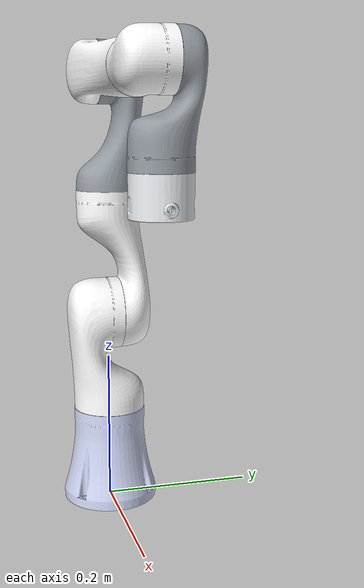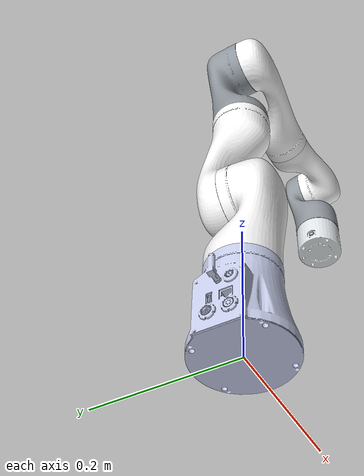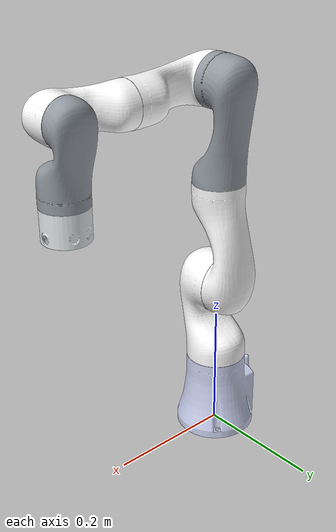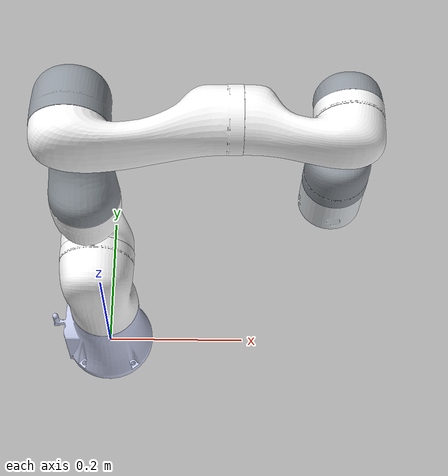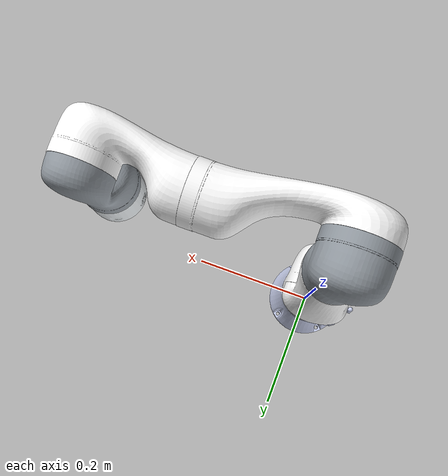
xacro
<?xml version="1.0"?>
<robot xmlns:xacro="http://www.ros.org/wiki/xacro" name="TCB710_06N">
    <xacro:arg name="initial_positions_file" default="initial_positions.yaml" />

    <!-- Import TCB710_06N urdf file -->
    <xacro:include filename="$(find tl_robot_description)/urdf/TCB710_06N.urdf" />

    <!-- Import control_xacro -->
    <xacro:include filename="TCB710_06N.ros2_control.xacro" />

    <xacro:TCB710_06N_ros2_control name="TLHardware" initial_positions_file="$(arg initial_positions_file)"/>

</robot>

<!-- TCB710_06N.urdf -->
<robot
  name="TCB710_06N">
<mujoco>
    <compiler meshdir="../meshes/TCB710_06N" discardvisual="false"/>
  </mujoco>
  <link
    name="tl_robot_link0">
    <inertial>
      <origin
        xyz="0.00019716 -5.6594E-05 0.037668"
        rpy="0 0 0" />
      <mass
        value="0.7499" />
      <inertia
        ixx="0.0015624"
        ixy="-6.4826E-08"
        ixz="4.2171E-05"
        iyy="0.0014306"
        iyz="-1.474E-07"
        izz="0.0018195" />
    </inertial>
    <visual>
      <origin
        xyz="0 0 0"
        rpy="0 0 0" />
      <geometry>
        <mesh
          filename="package://tl_robot_description/meshes/TCB710_06N/tl_robot_link0.STL" />
      </geometry>
      <material
        name="">
        <color
          rgba="0.79216 0.81961 0.93333 1" />
      </material>
    </visual>
    <collision>
      <origin
        xyz="0 0 0"
        rpy="0 0 0" />
      <geometry>
        <mesh
          filename="package://tl_robot_description/meshes/TCB710_06N/tl_robot_link0.STL" />
      </geometry>
    </collision>
  </link>
  <link
    name="tl_robot_link1">
    <inertial>
      <origin
        xyz="-3.2217E-06 -0.015124 0.070502"
        rpy="0 0 0" />
      <mass
        value="0.51848" />
      <inertia
        ixx="0.0016711"
        ixy="1.5621E-07"
        ixz="-1.5467E-07"
        iyy="0.001757"
        iyz="0.00026361"
        izz="0.00078448" />
    </inertial>
    <visual>
      <origin
        xyz="0 0 0"
        rpy="0 0 0" />
      <geometry>
        <mesh
          filename="package://tl_robot_description/meshes/TCB710_06N/tl_robot_link1.STL" />
      </geometry>
      <material
        name="">
        <color
          rgba="1 1 1 1" />
      </material>
    </visual>
    <collision>
      <origin
        xyz="0 0 0"
        rpy="0 0 0" />
      <geometry>
        <mesh
          filename="package://tl_robot_description/meshes/TCB710_06N/tl_robot_link1.STL" />
      </geometry>
    </collision>
  </link>
  <joint
    name="tl_robot_joint1"
    type="revolute">
    <origin
      xyz="0 0 0.1305"
      rpy="0 0 0" />
    <parent
      link="tl_robot_link0" />
    <child
      link="tl_robot_link1" />
    <axis
      xyz="0 0 1" />
    <limit
      lower="-3.141592654"
      upper="3.141592654"
      effort="0"
      velocity="0" />
  </joint>
  <link
    name="tl_robot_link2">
    <inertial>
      <origin
        xyz="-1.2697E-05 -0.066422 0.0045783"
        rpy="0 0 0" />
      <mass
        value="0.45884" />
      <inertia
        ixx="0.0016432"
        ixy="-2.7265E-07"
        ixz="-7.6925E-08"
        iyy="0.00055884"
        iyz="-0.00028299"
        izz="0.0017123" />
    </inertial>
    <visual>
      <origin
        xyz="0 0 0"
        rpy="0 0 0" />
      <geometry>
        <mesh
          filename="package://tl_robot_description/meshes/TCB710_06N/tl_robot_link2.STL" />
      </geometry>
      <material
        name="">
        <color
          rgba="1 1 1 1" />
      </material>
    </visual>
    <collision>
      <origin
        xyz="0 0 0"
        rpy="0 0 0" />
      <geometry>
        <mesh
          filename="package://tl_robot_description/meshes/TCB710_06N/tl_robot_link2.STL" />
      </geometry>
    </collision>
  </link>
  <joint
    name="tl_robot_joint2"
    type="revolute">
    <origin
      xyz="0 0.016 0.1315"
      rpy="-1.5708 0 0" />
    <parent
      link="tl_robot_link1" />
    <child
      link="tl_robot_link2" />
    <axis
      xyz="0 0 1" />
    <limit
      lower="-2.35619449"
      upper="2.35619449"
      effort="0"
      velocity="0" />
  </joint>
  <link
    name="tl_robot_link3">
    <inertial>
      <origin
        xyz="5.3045E-06 0.016606 0.08269"
        rpy="0 0 0" />
      <mass
        value="0.46363" />
      <inertia
        ixx="0.0016235"
        ixy="-7.0673E-08"
        ixz="-2.6457E-07"
        iyy="0.0016823"
        iyz="-0.0002385"
        izz="0.00046382" />
    </inertial>
    <visual>
      <origin
        xyz="0 0 0"
        rpy="0 0 0" />
      <geometry>
        <mesh
          filename="package://tl_robot_description/meshes/TCB710_06N/tl_robot_link3.STL" />
      </geometry>
      <material
        name="">
        <color
          rgba="0.56863 0.59608 0.62353 1" />
      </material>
    </visual>
    <collision>
      <origin
        xyz="0 0 0"
        rpy="0 0 0" />
      <geometry>
        <mesh
          filename="package://tl_robot_description/meshes/TCB710_06N/tl_robot_link3.STL" />
      </geometry>
    </collision>
  </link>
  <joint
    name="tl_robot_joint3"
    type="revolute">
    <origin
      xyz="0 -0.1675 -0.016"
      rpy="1.5708 0 0" />
    <parent
      link="tl_robot_link2" />
    <child
      link="tl_robot_link3" />
    <axis
      xyz="0 0 1" />
    <limit
      lower="-3.141592654"
      upper="3.141592654"
      effort="0"
      velocity="0" />
  </joint>
  <link
    name="tl_robot_link4">
    <inertial>
      <origin
        xyz="2.78354237109905E-06 0.0694960867121007 0.00637377402709792"
        rpy="0 0 0" />
      <mass
        value="0.396498595803027" />
      <inertia
        ixx="0.00137497380584233"
        ixy="7.68580314688507E-08"
        ixz="2.5461038707363E-08"
        iyy="0.000357925421554553"
        iyz="0.000211759769095163"
        izz="0.00141757729346042" />
    </inertial>
    <visual>
      <origin
        xyz="0 0 0"
        rpy="0 0 0" />
      <geometry>
        <mesh
          filename="package://tl_robot_description/meshes/TCB710_06N/tl_robot_link4.STL" />
      </geometry>
      <material
        name="">
        <color
          rgba="1 1 1 1" />
      </material>
    </visual>
    <collision>
      <origin
        xyz="0 0 0"
        rpy="0 0 0" />
      <geometry>
        <mesh
          filename="package://tl_robot_description/meshes/TCB710_06N/tl_robot_link4.STL" />
      </geometry>
    </collision>
  </link>
  <joint
    name="tl_robot_joint4"
    type="revolute">
    <origin
      xyz="0 -0.0135 0.153"
      rpy="1.5708 1.5708 0" />
    <parent
      link="tl_robot_link3" />
    <child
      link="tl_robot_link4" />
    <axis
      xyz="0 0 -1" />
    <limit
      lower="-4.101523742"
      upper="0.959931089"
      effort="0"
      velocity="0" />
  </joint>
  <link
    name="tl_robot_link5">
    <inertial>
      <origin
        xyz="-3.4093E-06 -0.013324 0.058713"
        rpy="0 0 0" />
      <mass
        value="0.24429" />
      <inertia
        ixx="0.00050736"
        ixy="3.1409E-08"
        ixz="-1.1005E-07"
        iyy="0.00052202"
        iyz="8.9413E-05"
        izz="0.00020297" />
    </inertial>
    <visual>
      <origin
        xyz="0 0 0"
        rpy="0 0 0" />
      <geometry>
        <mesh
          filename="package://tl_robot_description/meshes/TCB710_06N/tl_robot_link5.STL" />
      </geometry>
      <material
        name="">
        <color
          rgba="1 1 1 1" />
      </material>
    </visual>
    <collision>
      <origin
        xyz="0 0 0"
        rpy="0 0 0" />
      <geometry>
        <mesh
          filename="package://tl_robot_description/meshes/TCB710_06N/tl_robot_link5.STL" />
      </geometry>
    </collision>
  </link>
  <joint
    name="tl_robot_joint5"
    type="revolute">
    <origin
      xyz="0 0.1745 -0.0135"
      rpy="-1.5708 0 0" />
    <parent
      link="tl_robot_link4" />
    <child
      link="tl_robot_link5" />
    <axis
      xyz="0 0 1" />
    <limit
      lower="-3.141592654"
      upper="3.141592654"
      effort="0"
      velocity="0" />
  </joint>
  <link
    name="tl_robot_link6">
    <inertial>
      <origin
        xyz="-1.4032E-05 -0.043424 0.0005268"
        rpy="0 0 0" />
      <mass
        value="0.24867" />
      <inertia
        ixx="0.00043537"
        ixy="1.0258E-07"
        ixz="3.8396E-08"
        iyy="0.00022331"
        iyz="-9.1514E-05"
        izz="0.00044049" />
    </inertial>
    <visual>
      <origin
        xyz="0 0 0"
        rpy="0 0 0" />
      <geometry>
        <mesh
          filename="package://tl_robot_description/meshes/TCB710_06N/tl_robot_link6.STL" />
      </geometry>
      <material
        name="">
        <color
          rgba="0.56863 0.59608 0.62353 1" />
      </material>
    </visual>
    <collision>
      <origin
        xyz="0 0 0"
        rpy="0 0 0" />
      <geometry>
        <mesh
          filename="package://tl_robot_description/meshes/TCB710_06N/tl_robot_link6.STL" />
      </geometry>
    </collision>
  </link>
  <joint
    name="tl_robot_joint6"
    type="revolute">
    <origin
      xyz="0 0.0145 0.105"
      rpy="-1.5708 1.5708 0" />
    <parent
      link="tl_robot_link5" />
    <child
      link="tl_robot_link6" />
    <axis
      xyz="0 0 1" />
    <limit
      lower="-3.752457892"
      upper="0.610865238"
      effort="0"
      velocity="0" />
  </joint>
  <link
    name="tl_robot_link7">
    <inertial>
      <origin
        xyz="8.1873E-06 9.1246E-05 0.026769"
        rpy="0 0 0" />
      <mass
        value="0.22249" />
      <inertia
        ixx="0.00013531"
        ixy="-5.825E-08"
        ixz="-1.8884E-09"
        iyy="0.00013446"
        iyz="-1.2392E-08"
        izz="0.00018105" />
    </inertial>
    <visual>
      <origin
        xyz="0 0 0"
        rpy="0 0 0" />
      <geometry>
        <mesh
          filename="package://tl_robot_description/meshes/TCB710_06N/tl_robot_link7.STL" />
      </geometry>
      <material
        name="">
        <color
          rgba="0.89804 0.91765 0.92941 1" />
      </material>
    </visual>
    <collision>
      <origin
        xyz="0 0 0"
        rpy="0 0 0" />
      <geometry>
        <mesh
          filename="package://tl_robot_description/meshes/TCB710_06N/tl_robot_link7.STL" />
      </geometry>
    </collision>
  </link>
  <joint
    name="tl_robot_joint7"
    type="revolute">
    <origin
      xyz="0 -0.1145 -0.0145"
      rpy="1.5708 0 0" />
    <parent
      link="tl_robot_link6" />
    <child
      link="tl_robot_link7" />
    <axis
      xyz="0 0 1" />
    <limit
      lower="-3.141592654"
      upper="3.141592654"
      effort="0"
      velocity="0" />
  </joint>
   <!-- 修正末端180度偏差的虚拟关节和连杆 -->
  <joint
      name="tl_robot_joint_end"
      type="fixed">
      <origin
          xyz="0 0 0"
          rpy="0 0 -3.14159" />  <!-- 绕Z轴旋转180度修正 -->
      <parent
          link="tl_robot_link7" />
      <child
          link="tl_robot_link_end" />
      <axis
          xyz="0 0 1" />
  </joint>

  <link
      name="tl_robot_link_end">
      <inertial>
          <origin
              xyz="0 0 0"
              rpy="0 0 0" />
          <mass
              value="0.001" />
          <inertia
              ixx="1e-6"
              ixy="0"
              ixz="0"
              iyy="1e-6"
              iyz="0"
              izz="1e-6" />
      </inertial>
      <visual>
          <origin
              xyz="0 0 0"
              rpy="0 0 0" />
          <geometry>
              <box size="0.01 0.01 0.01" />  <!-- 小方块用于可视化 -->
          </geometry>
          <material
              name="eef_color">
              <color
                  rgba="1 0 0 0.5" />  <!-- 红色半透明 -->
          </material>
      </visual>
      <collision>
          <origin
              xyz="0 0 0"
              rpy="0 0 0" />
          <geometry>
              <box size="0.001 0.001 0.001" />  <!-- 很小的碰撞体 -->
          </geometry>
      </collision>
  </link>
</robot>
